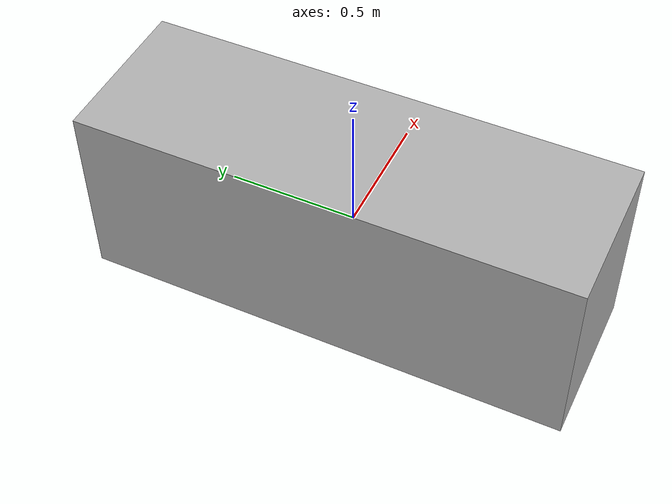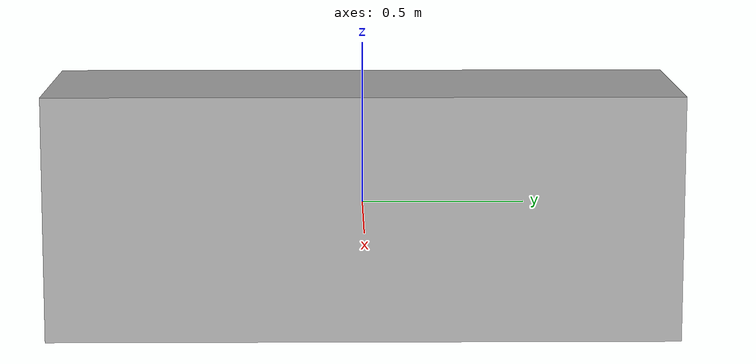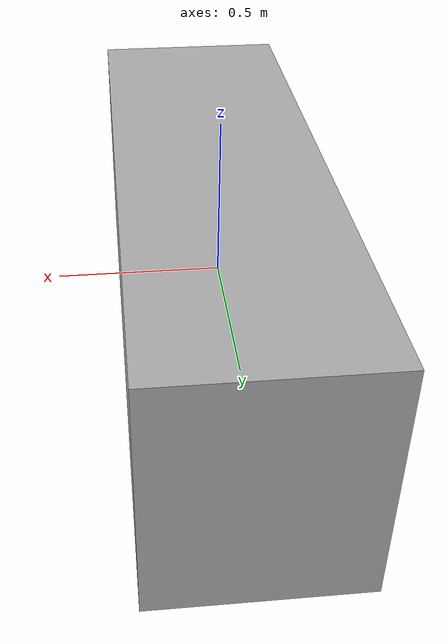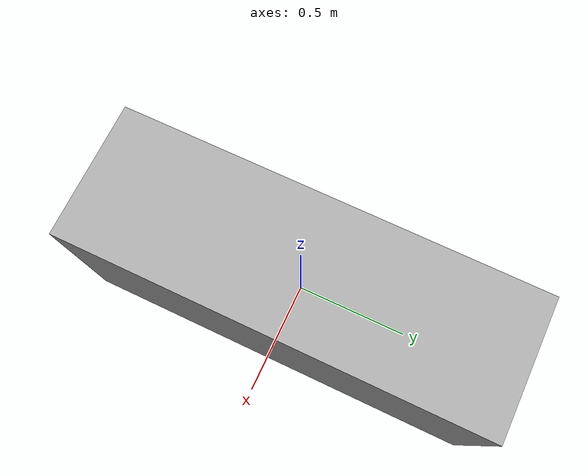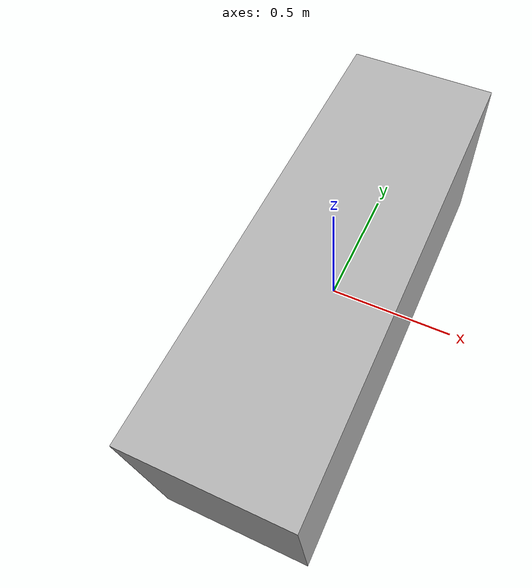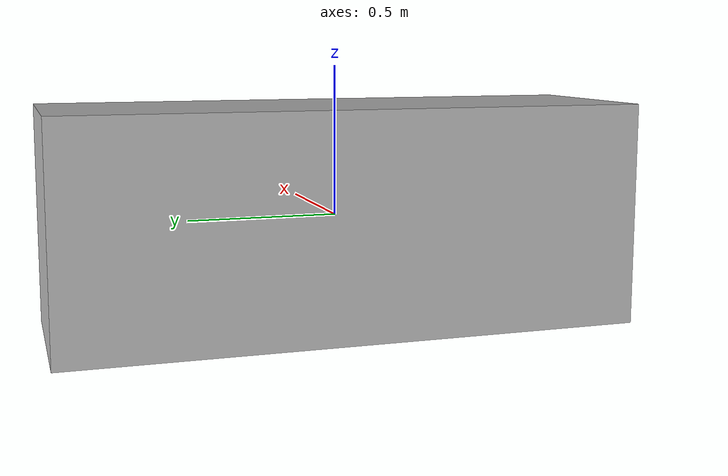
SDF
<?xml version='1.0'?>
<sdf version='1.6'>
  <model name="table">
      <static>1</static>
      <link name="table_link">
      <visual name="table_visual">
        <geometry>
          <box>
            <size>0.62 1.92 0.745</size>
          </box>
        </geometry>
        <material>
          <ambient>0.7 0.7 0.7 1.0</ambient>
        </material>
      </visual>
      <collision name="table_collision">
        <geometry>
          <box>
            <size>0.62 1.92 0.745</size>
          </box>
        </geometry>
      </collision>
    </link>
  </model>
</sdf>
